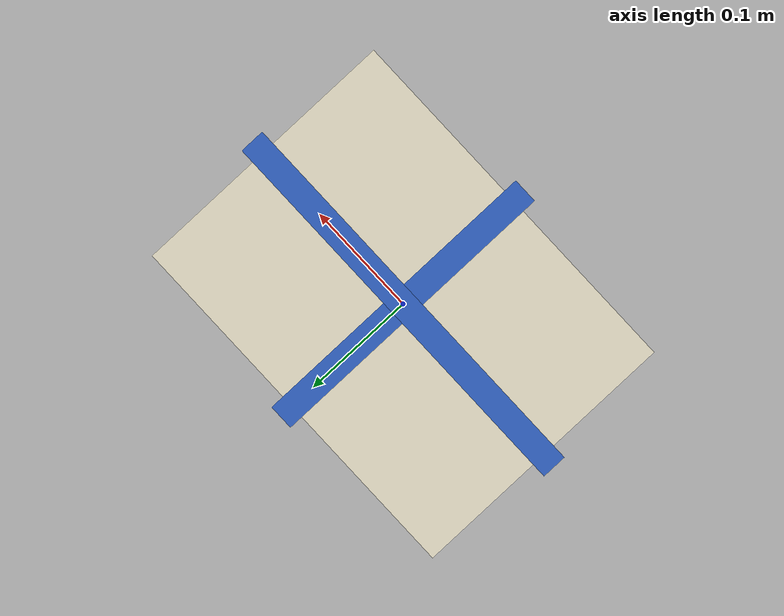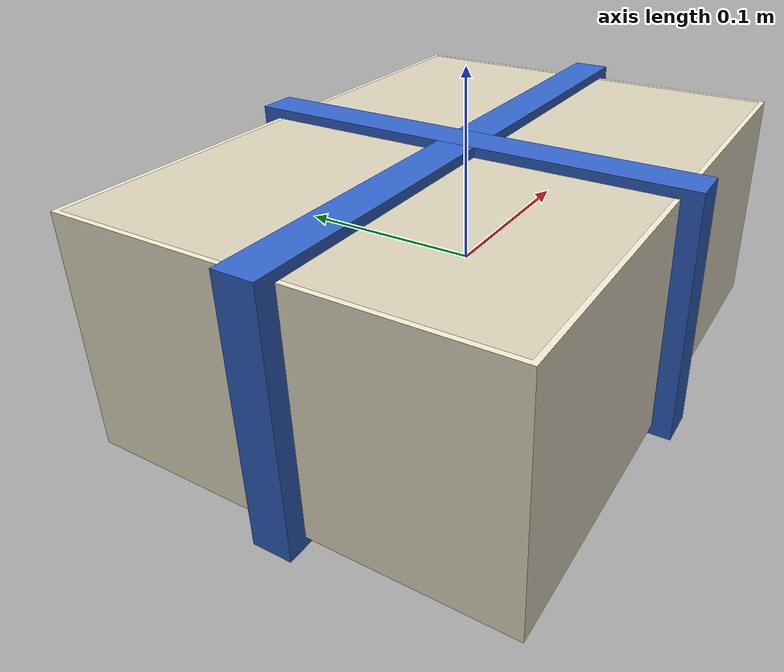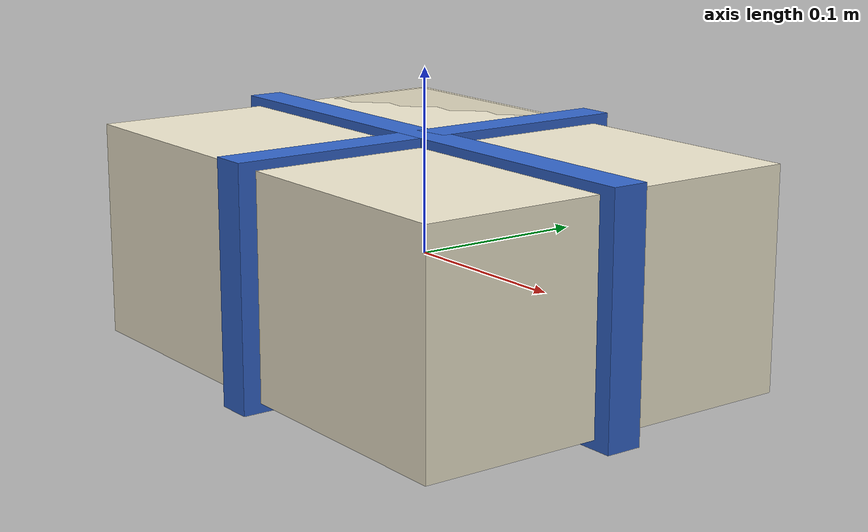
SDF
<?xml version="1.0"?>
<sdf version="1.8">
  <model name="paper_bundle">
    <static>false</static>
    <link name="link">
      <inertial>
        <mass>1.5</mass>
        <inertia>
          <ixx>0.0156</ixx>
          <ixy>0.0</ixy>
          <ixz>0.0</ixz>
          <iyy>0.0281</iyy>
          <iyz>0.0</iyz>
          <izz>0.0406</izz>
        </inertia>
      </inertial>

      <!-- Main paper stack body -->
      <collision name="collision">
        <geometry>
          <box>
            <size>0.30 0.22 0.12</size>
          </box>
        </geometry>
        <surface>
          <friction>
            <ode>
              <mu>0.7</mu>
              <mu2>0.6</mu2>
            </ode>
          </friction>
          <contact>
            <ode>
              <kp>1e5</kp>
              <kd>1.0</kd>
            </ode>
          </contact>
        </surface>
      </collision>

      <!-- Paper stack body visual -->
      <visual name="body_visual">
        <geometry>
          <box>
            <size>0.30 0.22 0.12</size>
          </box>
        </geometry>
        <material>
          <ambient>0.95 0.92 0.82 1</ambient>
          <diffuse>0.95 0.92 0.82 1</diffuse>
          <specular>0.05 0.05 0.05 1</specular>
        </material>
      </visual>

      <!-- Binding strap horizontal -->
      <visual name="strap_h_visual">
        <pose>0 0 0 0 0 0</pose>
        <geometry>
          <box>
            <size>0.32 0.02 0.13</size>
          </box>
        </geometry>
        <material>
          <ambient>0.2 0.4 0.8 1</ambient>
          <diffuse>0.2 0.4 0.8 1</diffuse>
          <specular>0.1 0.1 0.3 1</specular>
        </material>
      </visual>

      <!-- Binding strap vertical -->
      <visual name="strap_v_visual">
        <pose>0 0 0 0 0 1.5708</pose>
        <geometry>
          <box>
            <size>0.24 0.02 0.13</size>
          </box>
        </geometry>
        <material>
          <ambient>0.2 0.4 0.8 1</ambient>
          <diffuse>0.2 0.4 0.8 1</diffuse>
          <specular>0.1 0.1 0.3 1</specular>
        </material>
      </visual>

      <!-- Page edge lines (top) -->
      <visual name="pages_top_visual">
        <pose>0 0 0.059 0 0 0</pose>
        <geometry>
          <box>
            <size>0.295 0.215 0.002</size>
          </box>
        </geometry>
        <material>
          <ambient>0.85 0.82 0.72 1</ambient>
          <diffuse>0.85 0.82 0.72 1</diffuse>
          <specular>0.02 0.02 0.02 1</specular>
        </material>
      </visual>

      <!-- Page edge lines (front) -->
      <visual name="pages_front_visual">
        <pose>0 0.109 0 0 0 0</pose>
        <geometry>
          <box>
            <size>0.295 0.002 0.115</size>
          </box>
        </geometry>
        <material>
          <ambient>0.85 0.82 0.72 1</ambient>
          <diffuse>0.85 0.82 0.72 1</diffuse>
          <specular>0.02 0.02 0.02 1</specular>
        </material>
      </visual>

    </link>
  </model>
</sdf>
